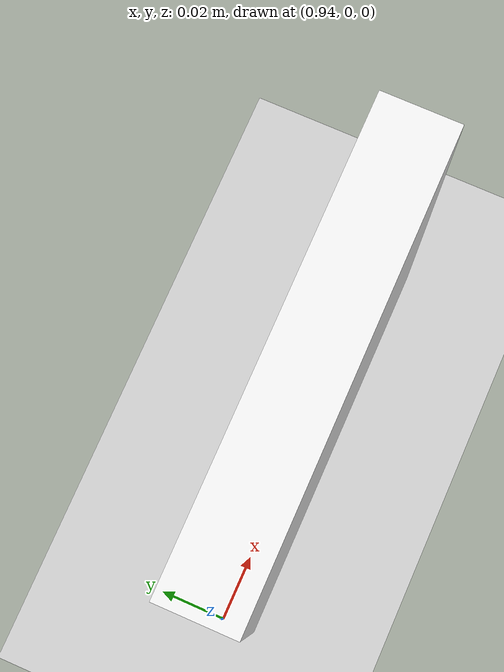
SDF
<?xml version="1.0"?>
<sdf version="1.4">
  <world name="racecar_tunnel">
    <scene>
      <ambient>0.75 0.75 0.75 1.0</ambient>
    </scene>

    <include>
      <uri>model://sun</uri>
    </include>

    <model name="ground_plane">
      <static>true</static>
      <link name="link">
        <collision name="collision">
          <geometry>
            <plane>
              <normal>0 0 1</normal>
              <size>150 150</size>
            </plane>
          </geometry>
          <surface>
            <friction>
              <ode>
                <mu>100</mu>
                <mu2>50</mu2>
              </ode>
            </friction>
          </surface>
        </collision>
        <visual name="visual">
          <cast_shadows>false</cast_shadows>
          <geometry>
            <plane>
              <normal>0 0 1</normal>
              <size>150 150</size>
            </plane>
          </geometry>
          <material>
            <script>
              <uri>file://media/materials/scripts/gazebo.material</uri>
              <name>Gazebo/Grey</name>
            </script>
          </material>
        </visual>
      </link>
    </model>

    <include>
      <uri>model://racecar_description/models/ar_tags/marker1</uri>
      <pose>1 0 0 0 0 0</pose>
      <name>marker_1</name>
    </include>
  </world>
</sdf>

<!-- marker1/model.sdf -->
<sdf version="1.6">
  <model name="marker1">
    <static>true</static>
    <link name="link">
      <pose>0 0 0.0600 0 0 0</pose>
      <collision name="collision">
        <geometry><box><size>0.12 0.02 0.12</size></box></geometry>
      </collision>
      <visual name="visual">
        <geometry><box><size>0.12 0.02 0.12</size></box></geometry>
        <material>
          <ambient>0.95 0.95 0.95 1.0</ambient>
          <diffuse>0.95 0.95 0.95 1.0</diffuse>
        </material>
      </visual>
    </link>
  </model>
</sdf>
